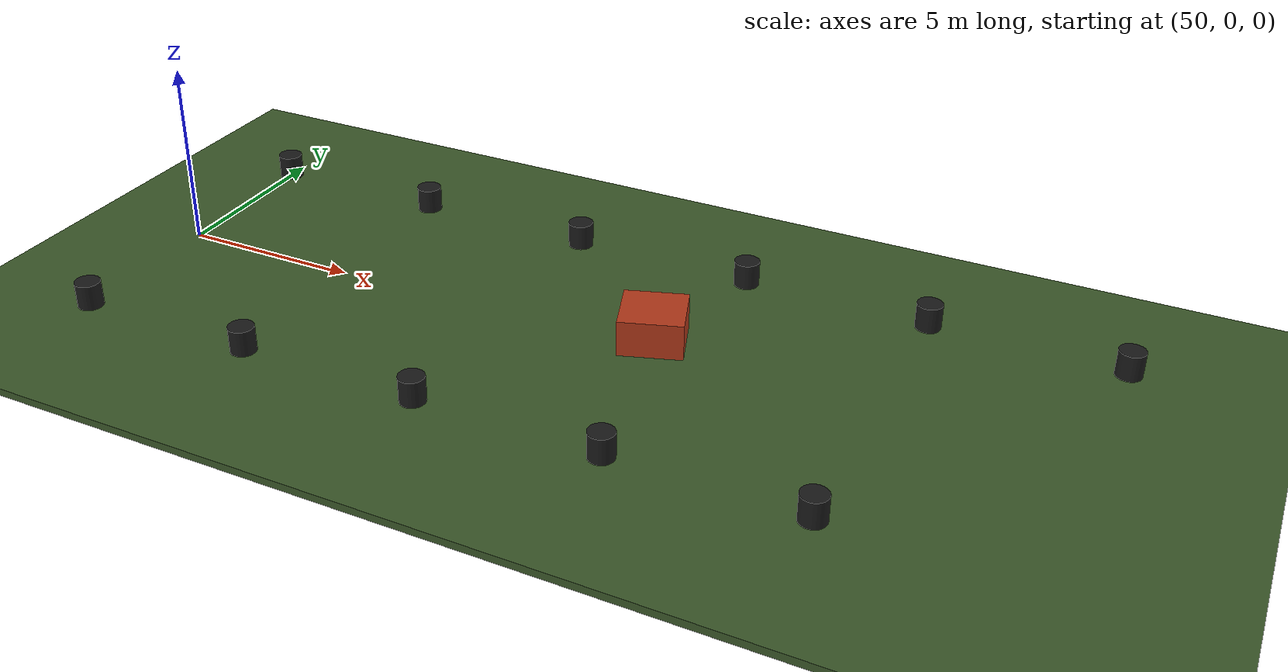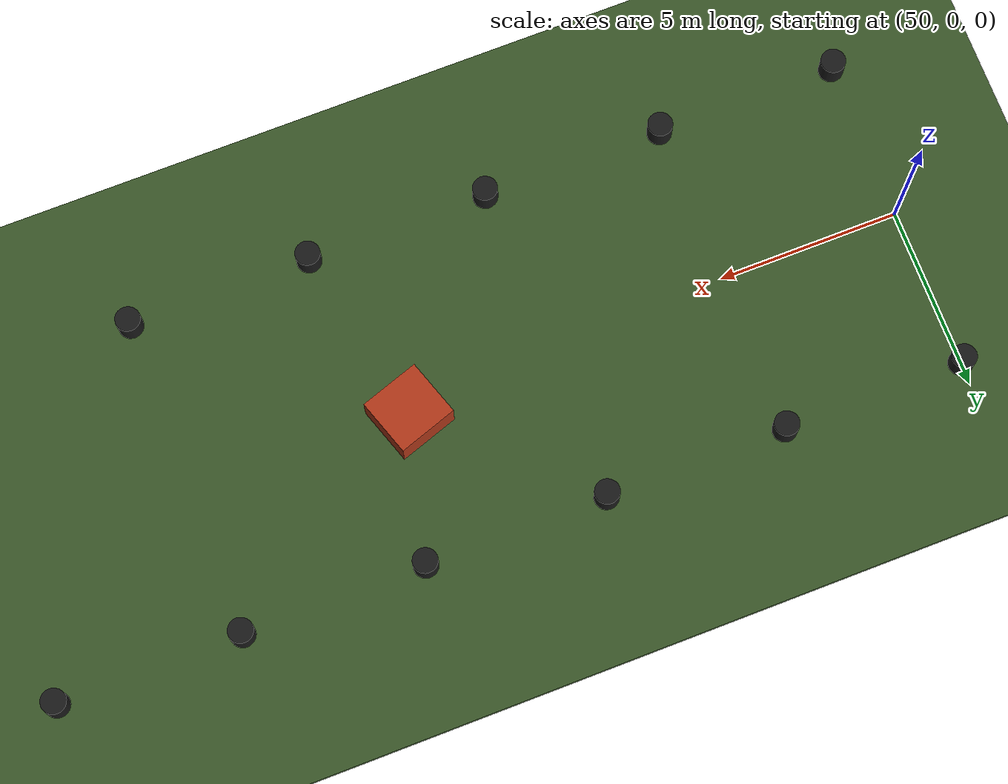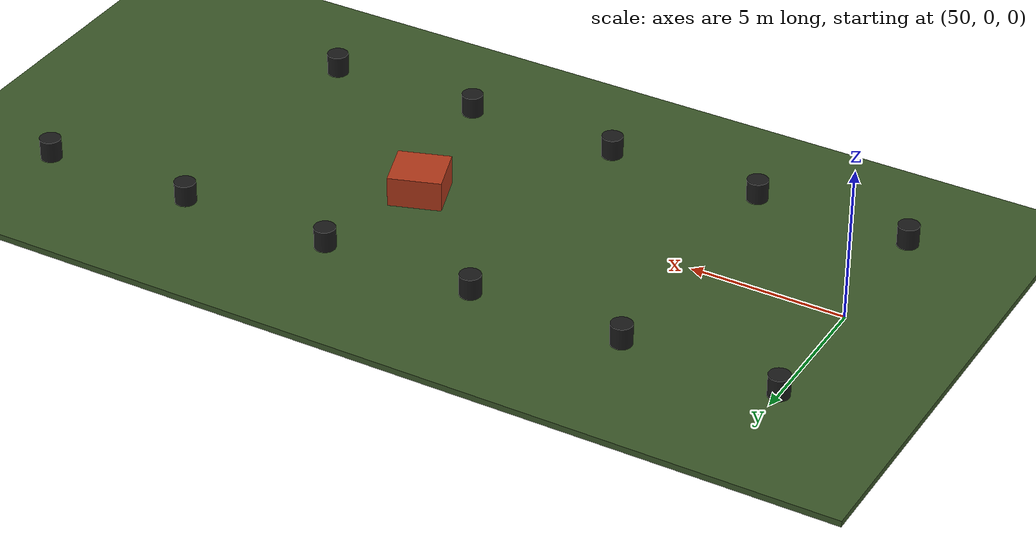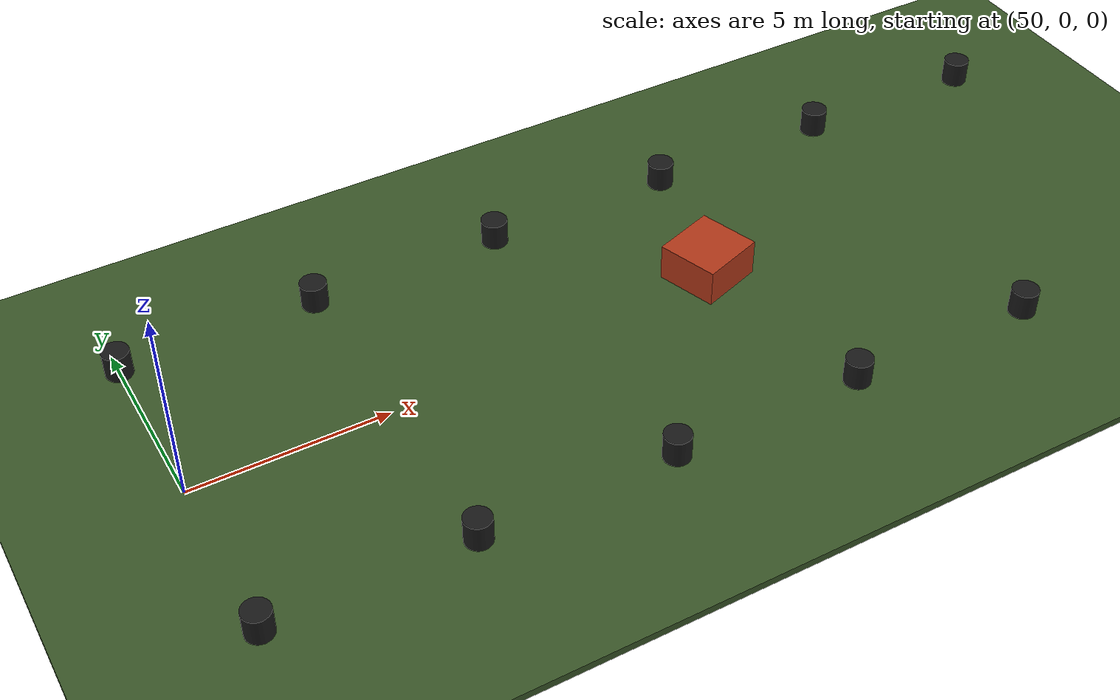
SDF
<sdf version="1.9">
 <world name="baja_track">
  <model name="base_ground">
   <static>true</static>
   <pose>50.0000 0.0000 -0.2400 0 0 0</pose>
   <link name="ground">
    <collision name="collision">
     <geometry><box><size>130.0000 30.0000 0.2</size></box></geometry>
     <surface><friction><ode><mu>1.1</mu><mu2>1.0</mu2></ode></friction></surface>
    </collision>
    <visual name="visual">
     <geometry><box><size>130.0000 30.0000 0.2</size></box></geometry>
     <material>
      <ambient>0.16 0.25 0.12 1</ambient>
      <diffuse>0.23 0.34 0.16 1</diffuse>
      <pbr><metal><roughness>1.0</roughness><metalness>0.0</metalness></metal></pbr>
     </material>
    </visual>
   </link>
  </model>
  <model name="obstacle_3">
   <static>true</static>
   <pose>64.00000 0.55443 0.51478 0 0 0.32662</pose>
   <link name="body">
    <collision name="collision">
     <geometry><box><size>1.6816 1.6057 0.9696</size></box></geometry>
     <surface><friction><ode><mu>0.9</mu><mu2>0.9</mu2></ode></friction></surface>
    </collision>
    <visual name="visual">
     <geometry><box><size>1.6816 1.6057 0.9696</size></box></geometry>
     <material>
      <ambient>0.42 0.12 0.07 1</ambient>
      <diffuse>0.70 0.22 0.10 1</diffuse>
      <pbr><metal><roughness>0.9</roughness><metalness>0.0</metalness></metal></pbr>
     </material>
    </visual>
   </link>
  </model>
  <model name="edge_tire_20">
   <static>true</static>
   <pose>50.00000 4.40000 0.35000 0 0 0.00000</pose>
   <link name="body">
    <collision name="collision">
     <geometry><cylinder><radius>0.340</radius><length>0.700</length></cylinder></geometry>
     <surface><friction><ode><mu>0.9</mu><mu2>0.9</mu2></ode></friction></surface>
    </collision>
    <visual name="visual">
     <geometry><cylinder><radius>0.340</radius><length>0.700</length></cylinder></geometry>
     <material>
      <ambient>0.05 0.05 0.05 1</ambient>
      <diffuse>0.10 0.10 0.10 1</diffuse>
      <pbr><metal><roughness>0.8</roughness><metalness>0.0</metalness></metal></pbr>
     </material>
    </visual>
   </link>
  </model>
  <model name="edge_tire_21">
   <static>true</static>
   <pose>50.00000 -4.40000 0.35000 0 0 0.00000</pose>
   <link name="body">
    <collision name="collision">
     <geometry><cylinder><radius>0.340</radius><length>0.700</length></cylinder></geometry>
     <surface><friction><ode><mu>0.9</mu><mu2>0.9</mu2></ode></friction></surface>
    </collision>
    <visual name="visual">
     <geometry><cylinder><radius>0.340</radius><length>0.700</length></cylinder></geometry>
     <material>
      <ambient>0.05 0.05 0.05 1</ambient>
      <diffuse>0.10 0.10 0.10 1</diffuse>
      <pbr><metal><roughness>0.8</roughness><metalness>0.0</metalness></metal></pbr>
     </material>
    </visual>
   </link>
  </model>
  <model name="edge_tire_22">
   <static>true</static>
   <pose>55.00000 4.40000 0.35000 0 0 0.00000</pose>
   <link name="body">
    <collision name="collision">
     <geometry><cylinder><radius>0.340</radius><length>0.700</length></cylinder></geometry>
     <surface><friction><ode><mu>0.9</mu><mu2>0.9</mu2></ode></friction></surface>
    </collision>
    <visual name="visual">
     <geometry><cylinder><radius>0.340</radius><length>0.700</length></cylinder></geometry>
     <material>
      <ambient>0.05 0.05 0.05 1</ambient>
      <diffuse>0.10 0.10 0.10 1</diffuse>
      <pbr><metal><roughness>0.8</roughness><metalness>0.0</metalness></metal></pbr>
     </material>
    </visual>
   </link>
  </model>
  <model name="edge_tire_23">
   <static>true</static>
   <pose>55.00000 -4.40000 0.35000 0 0 0.00000</pose>
   <link name="body">
    <collision name="collision">
     <geometry><cylinder><radius>0.340</radius><length>0.700</length></cylinder></geometry>
     <surface><friction><ode><mu>0.9</mu><mu2>0.9</mu2></ode></friction></surface>
    </collision>
    <visual name="visual">
     <geometry><cylinder><radius>0.340</radius><length>0.700</length></cylinder></geometry>
     <material>
      <ambient>0.05 0.05 0.05 1</ambient>
      <diffuse>0.10 0.10 0.10 1</diffuse>
      <pbr><metal><roughness>0.8</roughness><metalness>0.0</metalness></metal></pbr>
     </material>
    </visual>
   </link>
  </model>
  <model name="edge_tire_24">
   <static>true</static>
   <pose>60.00000 4.40000 0.35000 0 0 0.00000</pose>
   <link name="body">
    <collision name="collision">
     <geometry><cylinder><radius>0.340</radius><length>0.700</length></cylinder></geometry>
     <surface><friction><ode><mu>0.9</mu><mu2>0.9</mu2></ode></friction></surface>
    </collision>
    <visual name="visual">
     <geometry><cylinder><radius>0.340</radius><length>0.700</length></cylinder></geometry>
     <material>
      <ambient>0.05 0.05 0.05 1</ambient>
      <diffuse>0.10 0.10 0.10 1</diffuse>
      <pbr><metal><roughness>0.8</roughness><metalness>0.0</metalness></metal></pbr>
     </material>
    </visual>
   </link>
  </model>
  <model name="edge_tire_25">
   <static>true</static>
   <pose>60.00000 -4.40000 0.35000 0 0 0.00000</pose>
   <link name="body">
    <collision name="collision">
     <geometry><cylinder><radius>0.340</radius><length>0.700</length></cylinder></geometry>
     <surface><friction><ode><mu>0.9</mu><mu2>0.9</mu2></ode></friction></surface>
    </collision>
    <visual name="visual">
     <geometry><cylinder><radius>0.340</radius><length>0.700</length></cylinder></geometry>
     <material>
      <ambient>0.05 0.05 0.05 1</ambient>
      <diffuse>0.10 0.10 0.10 1</diffuse>
      <pbr><metal><roughness>0.8</roughness><metalness>0.0</metalness></metal></pbr>
     </material>
    </visual>
   </link>
  </model>
  <model name="edge_tire_26">
   <static>true</static>
   <pose>65.00000 4.40000 0.35000 0 0 0.00000</pose>
   <link name="body">
    <collision name="collision">
     <geometry><cylinder><radius>0.340</radius><length>0.700</length></cylinder></geometry>
     <surface><friction><ode><mu>0.9</mu><mu2>0.9</mu2></ode></friction></surface>
    </collision>
    <visual name="visual">
     <geometry><cylinder><radius>0.340</radius><length>0.700</length></cylinder></geometry>
     <material>
      <ambient>0.05 0.05 0.05 1</ambient>
      <diffuse>0.10 0.10 0.10 1</diffuse>
      <pbr><metal><roughness>0.8</roughness><metalness>0.0</metalness></metal></pbr>
     </material>
    </visual>
   </link>
  </model>
  <model name="edge_tire_27">
   <static>true</static>
   <pose>65.00000 -4.40000 0.35000 0 0 0.00000</pose>
   <link name="body">
    <collision name="collision">
     <geometry><cylinder><radius>0.340</radius><length>0.700</length></cylinder></geometry>
     <surface><friction><ode><mu>0.9</mu><mu2>0.9</mu2></ode></friction></surface>
    </collision>
    <visual name="visual">
     <geometry><cylinder><radius>0.340</radius><length>0.700</length></cylinder></geometry>
     <material>
      <ambient>0.05 0.05 0.05 1</ambient>
      <diffuse>0.10 0.10 0.10 1</diffuse>
      <pbr><metal><roughness>0.8</roughness><metalness>0.0</metalness></metal></pbr>
     </material>
    </visual>
   </link>
  </model>
  <model name="edge_tire_28">
   <static>true</static>
   <pose>70.00000 4.40000 0.35000 0 0 0.00000</pose>
   <link name="body">
    <collision name="collision">
     <geometry><cylinder><radius>0.340</radius><length>0.700</length></cylinder></geometry>
     <surface><friction><ode><mu>0.9</mu><mu2>0.9</mu2></ode></friction></surface>
    </collision>
    <visual name="visual">
     <geometry><cylinder><radius>0.340</radius><length>0.700</length></cylinder></geometry>
     <material>
      <ambient>0.05 0.05 0.05 1</ambient>
      <diffuse>0.10 0.10 0.10 1</diffuse>
      <pbr><metal><roughness>0.8</roughness><metalness>0.0</metalness></metal></pbr>
     </material>
    </visual>
   </link>
  </model>
  <model name="edge_tire_29">
   <static>true</static>
   <pose>70.00000 -4.40000 0.35000 0 0 0.00000</pose>
   <link name="body">
    <collision name="collision">
     <geometry><cylinder><radius>0.340</radius><length>0.700</length></cylinder></geometry>
     <surface><friction><ode><mu>0.9</mu><mu2>0.9</mu2></ode></friction></surface>
    </collision>
    <visual name="visual">
     <geometry><cylinder><radius>0.340</radius><length>0.700</length></cylinder></geometry>
     <material>
      <ambient>0.05 0.05 0.05 1</ambient>
      <diffuse>0.10 0.10 0.10 1</diffuse>
      <pbr><metal><roughness>0.8</roughness><metalness>0.0</metalness></metal></pbr>
     </material>
    </visual>
   </link>
  </model>
  <model name="edge_tire_30">
   <static>true</static>
   <pose>75.00000 4.40000 0.35000 0 0 0.00000</pose>
   <link name="body">
    <collision name="collision">
     <geometry><cylinder><radius>0.340</radius><length>0.700</length></cylinder></geometry>
     <surface><friction><ode><mu>0.9</mu><mu2>0.9</mu2></ode></friction></surface>
    </collision>
    <visual name="visual">
     <geometry><cylinder><radius>0.340</radius><length>0.700</length></cylinder></geometry>
     <material>
      <ambient>0.05 0.05 0.05 1</ambient>
      <diffuse>0.10 0.10 0.10 1</diffuse>
      <pbr><metal><roughness>0.8</roughness><metalness>0.0</metalness></metal></pbr>
     </material>
    </visual>
   </link>
  </model>
 </world>
</sdf>
